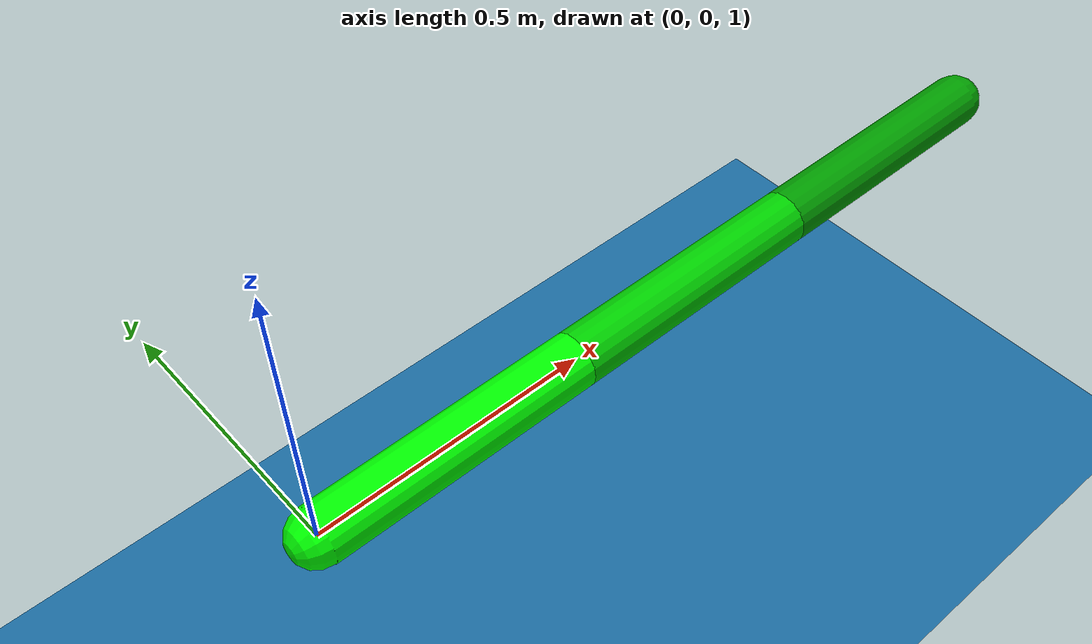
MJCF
<mujoco model="worm_swimmer">
    <option gravity="0 0 -0.1" timestep="0.01" viscosity="1.0" density="1000" integrator="implicitfast">
        <flag energy="enable"/>
    </option>

    <asset>
    <texture name="grid" type="2d" builtin="checker" width="512" height="512" rgb1=".1 .2 .3" rgb2=".2 .3 .4"/>
    <material name="grid" texture="grid" texrepeat="1 1" texuniform="true" reflectance=".2"/>
    </asset>

    <default>
        <joint damping="0.5"/>
        <geom friction="0.1 0.1 0.1"/>
    </default>

    <worldbody>
        <light name="top" pos="0 0 20" mode="trackcom"/>
        <light diffuse=".5 .5 .5" pos="0 0 20" dir="0 0 -1"/>
        <geom name="floor" type="plane" size="0 0 .05" material="grid" condim="3" rgba="0.1 0.4 0.6 1"/>

        <!-- Water visualiser (purely visual, no collisions) -->
        <geom name="water_surface" type="plane" size="10 10 0.01" pos="0 0 2.25" rgba="0 0.5 1 0.3" contype="0" conaffinity="0"/>

        <camera name="main_camera"
                pos="-3 -3 10"
                xyaxes="1 0 0 0 0 1"/>

        <camera name="top_follow" pos="0 0 10" xyaxes="1 0 0 0 0 1" mode="trackcom"/>

        <body name="segment1" pos="0 0 1">
            <freejoint name="root"/>
            <geom type="capsule"
                  size="0.05"
                  fromto="0 0 0 0.5 0 0"
                  fluidshape="ellipsoid"
                  fluidcoef="0.5 0.25 1.5 1.0 1.0"
                  rgba="0 1 0 1"/>

            <body name="segment2" pos="0.5 0 0">
                <joint name="joint1" type="hinge" axis="0 1 0" pos="0 0 0"/>
                <geom type="capsule"
                      size="0.05"
                      fluidshape="ellipsoid"
                      fluidcoef="0.5 0.25 1.5 1.0 1.0"
                      fromto="0 0 0 0.5 0 0"
                      rgba="0 0.8 0 1"/>

                <body name="segment3" pos="0.5 0 0">
                    <joint name="joint2" type="hinge" axis="0 1 0" pos="0 0 0"/>
                    <geom type="capsule"
                          size="0.05"
                          fluidshape="ellipsoid"
                          fluidcoef="0.5 0.25 1.5 1.0 1.0"
                          fromto="0 0 0 0.5 0 0"
                          rgba="0 0.6 0 1"/>
                </body>
            </body>
        </body>
    </worldbody>

    <actuator>
        <motor name="muscle1" joint="joint1" gear="10"/>
        <motor name="muscle2" joint="joint2" gear="10"/>
    </actuator>
</mujoco>
